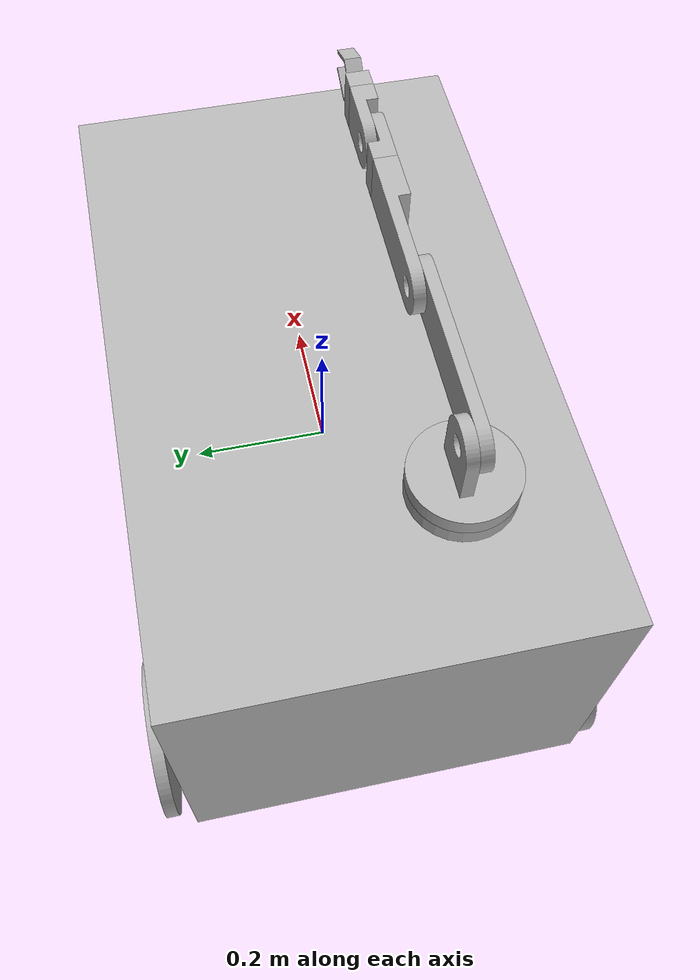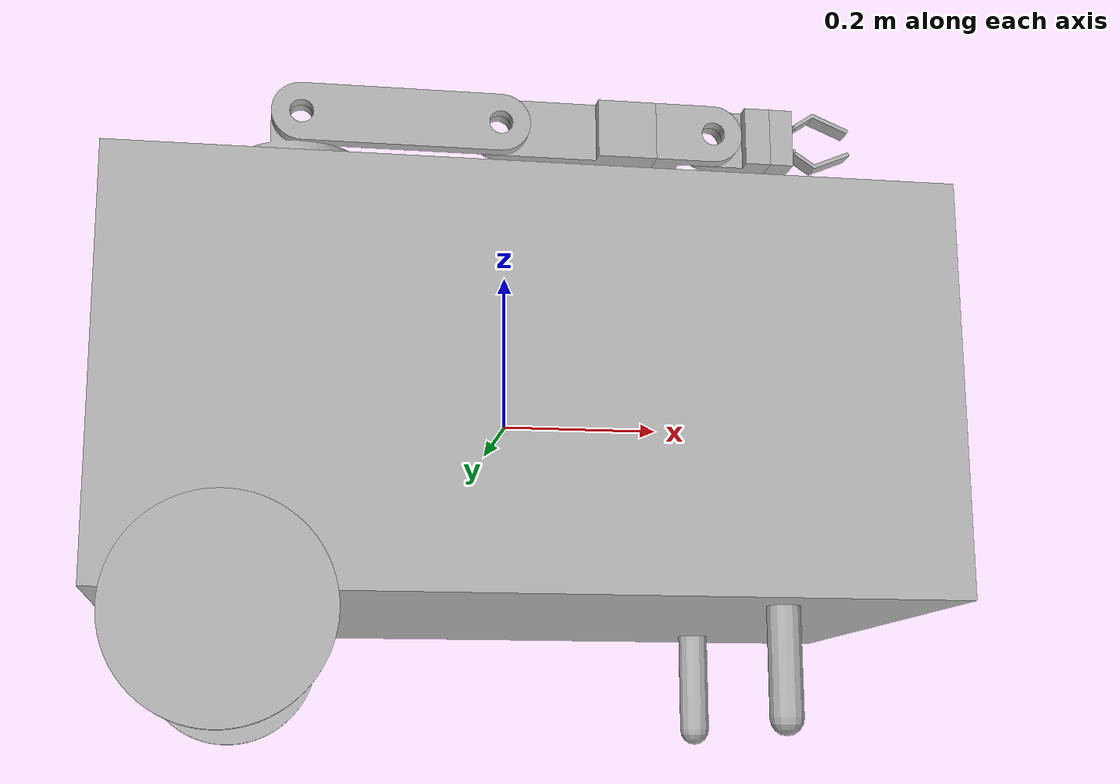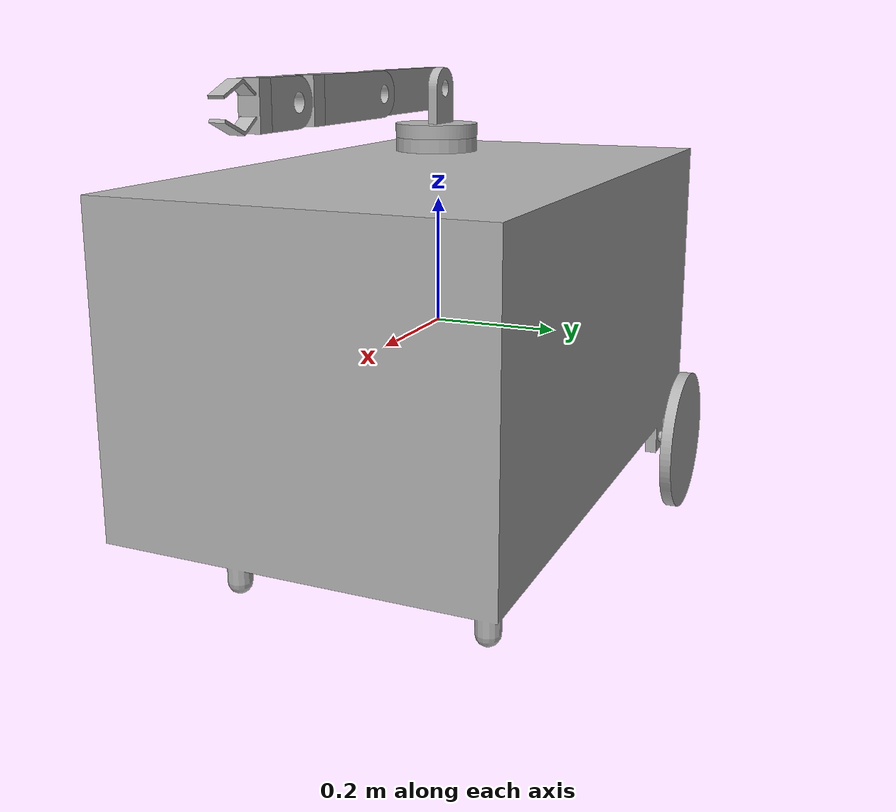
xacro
<?xml version="1.0" ?>
<robot name="cart" xmlns:xacro="http://www.ros.org/wiki/xacro">

<xacro:include filename="$(find cart_description)/urdf/materials.xacro" />
<xacro:include filename="$(find cart_description)/urdf/cart.trans" />
<xacro:include filename="$(find cart_description)/urdf/cart.gazebo" />
<link name="base_link">
  <inertial>
    <origin rpy="0 0 0" xyz="-0.00018283157073058443 -0.00018351438369959607 -0.00010839562263001873"/>
    <mass value="318.9761242992708"/>
    <inertia ixx="16.28277" ixy="-0.016087" ixz="0.058543" iyy="33.292947" iyz="0.015372" izz="36.161666"/>
  </inertial>
  <visual>
    <origin rpy="0 0 0" xyz="0 0 0"/>
    <geometry>
      <mesh filename="package://cart_description/meshes/base_link.stl" scale="0.001 0.001 0.001"/>
    </geometry>
    <material name="silver"/>
  </visual>
  <collision>
    <origin rpy="0 0 0" xyz="0 0 0"/>
    <geometry>
      <mesh filename="package://cart_description/meshes/base_link.stl" scale="0.001 0.001 0.001"/>
    </geometry>
  </collision>
</link>

<link name="right_wheel_1">
  <inertial>
    <origin rpy="0 0 0" xyz="1.1102230246251565e-16 -0.01100000000000001 5.551115123125783e-17"/>
    <mass value="2.6507188014663874"/>
    <inertia ixx="0.010443" ixy="0.0" ixz="0.0" iyy="0.020709" iyz="-0.0" izz="0.010443"/>
  </inertial>
  <visual>
    <origin rpy="0 0 0" xyz="0.35 0.33 0.275"/>
    <geometry>
      <mesh filename="package://cart_description/meshes/right_wheel_1.stl" scale="0.001 0.001 0.001"/>
    </geometry>
    <material name="silver"/>
  </visual>
  <collision>
    <origin rpy="0 0 0" xyz="0.35 0.33 0.275"/>
    <geometry>
      <mesh filename="package://cart_description/meshes/right_wheel_1.stl" scale="0.001 0.001 0.001"/>
    </geometry>
  </collision>
</link>

<link name="left_wheel_1">
  <inertial>
    <origin rpy="0 0 0" xyz="0.0 0.010000000000000009 5.551115123125783e-17"/>
    <mass value="2.6507188014663874"/>
    <inertia ixx="0.010443" ixy="0.0" ixz="0.0" iyy="0.020709" iyz="-0.0" izz="0.010443"/>
  </inertial>
  <visual>
    <origin rpy="0 0 0" xyz="0.35 -0.33 0.275"/>
    <geometry>
      <mesh filename="package://cart_description/meshes/left_wheel_1.stl" scale="0.001 0.001 0.001"/>
    </geometry>
    <material name="silver"/>
  </visual>
  <collision>
    <origin rpy="0 0 0" xyz="0.35 -0.33 0.275"/>
    <geometry>
      <mesh filename="package://cart_description/meshes/left_wheel_1.stl" scale="0.001 0.001 0.001"/>
    </geometry>
  </collision>
</link>

<link name="shoulder_1">
  <inertial>
    <origin rpy="0 0 0" xyz="-3.3306690738754696e-16 0.001722907844136326 0.023726192755971764"/>
    <mass value="0.5831102523938083"/>
    <inertia ixx="0.001082" ixy="0.0" ixz="-0.0" iyy="0.001127" iyz="-4.6e-05" izz="0.001381"/>
  </inertial>
  <visual>
    <origin rpy="0 0 0" xyz="0.275 0.125 -0.275"/>
    <geometry>
      <mesh filename="package://cart_description/meshes/shoulder_1.stl" scale="0.001 0.001 0.001"/>
    </geometry>
    <material name="silver"/>
  </visual>
  <collision>
    <origin rpy="0 0 0" xyz="0.275 0.125 -0.275"/>
    <geometry>
      <mesh filename="package://cart_description/meshes/shoulder_1.stl" scale="0.001 0.001 0.001"/>
    </geometry>
  </collision>
</link>

<link name="upper_arm_1">
  <inertial>
    <origin rpy="0 0 0" xyz="0.12499999999989875 -0.008750000000000008 -5.551115123125783e-17"/>
    <mass value="0.403539444936162"/>
    <inertia ixx="0.000201" ixy="0.0" ixz="0.0" iyy="0.003226" iyz="0.0" izz="0.003046"/>
  </inertial>
  <visual>
    <origin rpy="0 0 0" xyz="0.275 0.125 -0.3625"/>
    <geometry>
      <mesh filename="package://cart_description/meshes/upper_arm_1.stl" scale="0.001 0.001 0.001"/>
    </geometry>
    <material name="silver"/>
  </visual>
  <collision>
    <origin rpy="0 0 0" xyz="0.275 0.125 -0.3625"/>
    <geometry>
      <mesh filename="package://cart_description/meshes/upper_arm_1.stl" scale="0.001 0.001 0.001"/>
    </geometry>
  </collision>
</link>

<link name="fore_arm_1">
  <inertial>
    <origin rpy="0 0 0" xyz="0.10751110839793096 0.004301264480083514 -2.7755575615628914e-16"/>
    <mass value="0.4104572224680784"/>
    <inertia ixx="0.000227" ixy="0.0001" ixz="0.0" iyy="0.001977" iyz="0.0" izz="0.001818"/>
  </inertial>
  <visual>
    <origin rpy="0 0 0" xyz="0.025 0.125 -0.3625"/>
    <geometry>
      <mesh filename="package://cart_description/meshes/fore_arm_1.stl" scale="0.001 0.001 0.001"/>
    </geometry>
    <material name="silver"/>
  </visual>
  <collision>
    <origin rpy="0 0 0" xyz="0.025 0.125 -0.3625"/>
    <geometry>
      <mesh filename="package://cart_description/meshes/fore_arm_1.stl" scale="0.001 0.001 0.001"/>
    </geometry>
  </collision>
</link>

<link name="wrist_1_1">
  <inertial>
    <origin rpy="0 0 0" xyz="0.04164939019561356 -0.0042901829652049195 -1.1102230246251565e-16"/>
    <mass value="0.17742284746808065"/>
    <inertia ixx="9.9e-05" ixy="2e-05" ixz="-0.0" iyy="0.000256" iyz="0.0" izz="0.000187"/>
  </inertial>
  <visual>
    <origin rpy="0 0 0" xyz="-0.175 0.125 -0.3625"/>
    <geometry>
      <mesh filename="package://cart_description/meshes/wrist_1_1.stl" scale="0.001 0.001 0.001"/>
    </geometry>
    <material name="silver"/>
  </visual>
  <collision>
    <origin rpy="0 0 0" xyz="-0.175 0.125 -0.3625"/>
    <geometry>
      <mesh filename="package://cart_description/meshes/wrist_1_1.stl" scale="0.001 0.001 0.001"/>
    </geometry>
  </collision>
</link>

<link name="wrist_2_1">
  <inertial>
    <origin rpy="0 0 0" xyz="0.03335060980392318 0.004290182965204906 -2.220446049250313e-16"/>
    <mass value="0.17742284746807957"/>
    <inertia ixx="9.9e-05" ixy="2e-05" ixz="-0.0" iyy="0.000256" iyz="0.0" izz="0.000187"/>
  </inertial>
  <visual>
    <origin rpy="0 0 0" xyz="-0.25 0.125 -0.3625"/>
    <geometry>
      <mesh filename="package://cart_description/meshes/wrist_2_1.stl" scale="0.001 0.001 0.001"/>
    </geometry>
    <material name="silver"/>
  </visual>
  <collision>
    <origin rpy="0 0 0" xyz="-0.25 0.125 -0.3625"/>
    <geometry>
      <mesh filename="package://cart_description/meshes/wrist_2_1.stl" scale="0.001 0.001 0.001"/>
    </geometry>
  </collision>
</link>

<link name="palm_1">
  <inertial>
    <origin rpy="0 0 0" xyz="0.015015195055790409 -1.1892059483570305e-05 -1.0419345258250168e-06"/>
    <mass value="0.08354859739926174"/>
    <inertia ixx="4.8e-05" ixy="0.0" ixz="0.0" iyy="4.5e-05" iyz="-0.0" izz="1.5e-05"/>
  </inertial>
  <visual>
    <origin rpy="0 0 0" xyz="-0.325 0.125 -0.3625"/>
    <geometry>
      <mesh filename="package://cart_description/meshes/palm_1.stl" scale="0.001 0.001 0.001"/>
    </geometry>
    <material name="silver"/>
  </visual>
  <collision>
    <origin rpy="0 0 0" xyz="-0.325 0.125 -0.3625"/>
    <geometry>
      <mesh filename="package://cart_description/meshes/palm_1.stl" scale="0.001 0.001 0.001"/>
    </geometry>
  </collision>
</link>

<link name="ef_2_1">
  <inertial>
    <origin rpy="0 0 0" xyz="0.03677397855690523 0.012499999999997902 0.00878067988754222"/>
    <mass value="0.0108912001874136"/>
    <inertia ixx="1e-06" ixy="-0.0" ixz="0.0" iyy="6e-06" iyz="-0.0" izz="6e-06"/>
  </inertial>
  <visual>
    <origin rpy="0 0 0" xyz="-0.357254 0.1375 -0.378794"/>
    <geometry>
      <mesh filename="package://cart_description/meshes/ef_2_1.stl" scale="0.001 0.001 0.001"/>
    </geometry>
    <material name="silver"/>
  </visual>
  <collision>
    <origin rpy="0 0 0" xyz="-0.357254 0.1375 -0.378794"/>
    <geometry>
      <mesh filename="package://cart_description/meshes/ef_2_1.stl" scale="0.001 0.001 0.001"/>
    </geometry>
  </collision>
</link>

<link name="ef_1_1">
  <inertial>
    <origin rpy="0 0 0" xyz="0.03677397855686415 0.012500000000012335 -0.008780679887569587"/>
    <mass value="0.010891200187413503"/>
    <inertia ixx="1e-06" ixy="0.0" ixz="-0.0" iyy="6e-06" iyz="0.0" izz="6e-06"/>
  </inertial>
  <visual>
    <origin rpy="0 0 0" xyz="-0.357254 0.1375 -0.346206"/>
    <geometry>
      <mesh filename="package://cart_description/meshes/ef_1_1.stl" scale="0.001 0.001 0.001"/>
    </geometry>
    <material name="silver"/>
  </visual>
  <collision>
    <origin rpy="0 0 0" xyz="-0.357254 0.1375 -0.346206"/>
    <geometry>
      <mesh filename="package://cart_description/meshes/ef_1_1.stl" scale="0.001 0.001 0.001"/>
    </geometry>
  </collision>
</link>

<joint name="right_wheel" type="continuous">
  <origin rpy="0 0 0" xyz="-0.35 -0.33 -0.275"/>
  <parent link="base_link"/>
  <child link="right_wheel_1"/>
  <axis xyz="0.0 -1.0 0.0"/>
</joint>

<joint name="left_wheel" type="continuous">
  <origin rpy="0 0 0" xyz="-0.35 0.33 -0.275"/>
  <parent link="base_link"/>
  <child link="left_wheel_1"/>
  <axis xyz="0.0 1.0 0.0"/>
</joint>

<joint name="Rev3" type="continuous">
  <origin rpy="0 0 0" xyz="-0.275 -0.125 0.275"/>
  <parent link="base_link"/>
  <child link="shoulder_1"/>
  <axis xyz="0.0 0.0 1.0"/>
</joint>

<joint name="Rev4" type="revolute">
  <origin rpy="0 0 0" xyz="0.0 0.0 0.0875"/>
  <parent link="shoulder_1"/>
  <child link="upper_arm_1"/>
  <axis xyz="0.0 1.0 0.0"/>
  <limit effort="100" lower="-3.316126" upper="0.174533" velocity="100"/>
</joint>

<joint name="Rev5" type="revolute">
  <origin rpy="0 0 0" xyz="0.25 0.0 0.0"/>
  <parent link="upper_arm_1"/>
  <child link="fore_arm_1"/>
  <axis xyz="0.0 1.0 0.0"/>
  <limit effort="100" lower="-2.530727" upper="2.530727" velocity="100"/>
</joint>

<joint name="Rev6" type="continuous">
  <origin rpy="0 0 0" xyz="0.2 0.0 0.0"/>
  <parent link="fore_arm_1"/>
  <child link="wrist_1_1"/>
  <axis xyz="1.0 0.0 0.0"/>
</joint>

<joint name="Rev7" type="revolute">
  <origin rpy="0 0 0" xyz="0.075 0.0 0.0"/>
  <parent link="wrist_1_1"/>
  <child link="wrist_2_1"/>
  <axis xyz="0.0 -1.0 0.0"/>
  <limit effort="100" lower="-1.658063" upper="1.658063" velocity="100"/>
</joint>

<joint name="Rev8" type="continuous">
  <origin rpy="0 0 0" xyz="0.075 0.0 0.0"/>
  <parent link="wrist_2_1"/>
  <child link="palm_1"/>
  <axis xyz="1.0 0.0 0.0"/>
</joint>

<joint name="Rev9" type="revolute">
  <origin rpy="0 0 0" xyz="0.032254 -0.0125 0.016294"/>
  <parent link="palm_1"/>
  <child link="ef_2_1"/>
  <axis xyz="0.0 -1.0 0.0"/>
  <limit effort="100" lower="-0.174533" upper="0.872665" velocity="100"/>
</joint>

<joint name="Rev10" type="revolute">
  <origin rpy="0 0 0" xyz="0.032254 -0.0125 -0.016294"/>
  <parent link="palm_1"/>
  <child link="ef_1_1"/>
  <axis xyz="0.0 -1.0 0.0"/>
  <limit effort="100" lower="-0.959931" upper="0.174533" velocity="100"/>
</joint>

</robot>

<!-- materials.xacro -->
<robot name="cart" xmlns:xacro="http://www.ros.org/wiki/xacro" >

<material name="silver">
  <color rgba="0.700 0.700 0.700 1.000"/>
</material>

</robot>

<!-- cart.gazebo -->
<robot name="cart" xmlns:xacro="http://www.ros.org/wiki/xacro" >

<xacro:property name="body_color" value="Gazebo/Silver" />

<gazebo>
  <plugin filename="libgazebo_ros_control.so" name="control"/>
</gazebo>
<gazebo reference="base_link">
  <material>${body_color}</material>
  <mu1>0.2</mu1>
  <mu2>0.2</mu2>
  <selfCollide>true</selfCollide>
  <gravity>true</gravity>
</gazebo>

<gazebo reference="right_wheel_1">
  <material>${body_color}</material>
  <mu1>0.2</mu1>
  <mu2>0.2</mu2>
  <selfCollide>true</selfCollide>
</gazebo>

<gazebo reference="left_wheel_1">
  <material>${body_color}</material>
  <mu1>0.2</mu1>
  <mu2>0.2</mu2>
  <selfCollide>true</selfCollide>
</gazebo>

<gazebo reference="shoulder_1">
  <material>${body_color}</material>
  <mu1>0.2</mu1>
  <mu2>0.2</mu2>
  <selfCollide>true</selfCollide>
</gazebo>

<gazebo reference="upper_arm_1">
  <material>${body_color}</material>
  <mu1>0.2</mu1>
  <mu2>0.2</mu2>
  <selfCollide>true</selfCollide>
</gazebo>

<gazebo reference="fore_arm_1">
  <material>${body_color}</material>
  <mu1>0.2</mu1>
  <mu2>0.2</mu2>
  <selfCollide>true</selfCollide>
</gazebo>

<gazebo reference="wrist_1_1">
  <material>${body_color}</material>
  <mu1>0.2</mu1>
  <mu2>0.2</mu2>
  <selfCollide>true</selfCollide>
</gazebo>

<gazebo reference="wrist_2_1">
  <material>${body_color}</material>
  <mu1>0.2</mu1>
  <mu2>0.2</mu2>
  <selfCollide>true</selfCollide>
</gazebo>

<gazebo reference="palm_1">
  <material>${body_color}</material>
  <mu1>0.2</mu1>
  <mu2>0.2</mu2>
  <selfCollide>true</selfCollide>
</gazebo>

<gazebo reference="ef_2_1">
  <material>${body_color}</material>
  <mu1>0.2</mu1>
  <mu2>0.2</mu2>
  <selfCollide>true</selfCollide>
</gazebo>

<gazebo reference="ef_1_1">
  <material>${body_color}</material>
  <mu1>0.2</mu1>
  <mu2>0.2</mu2>
  <selfCollide>true</selfCollide>
</gazebo>

</robot>
